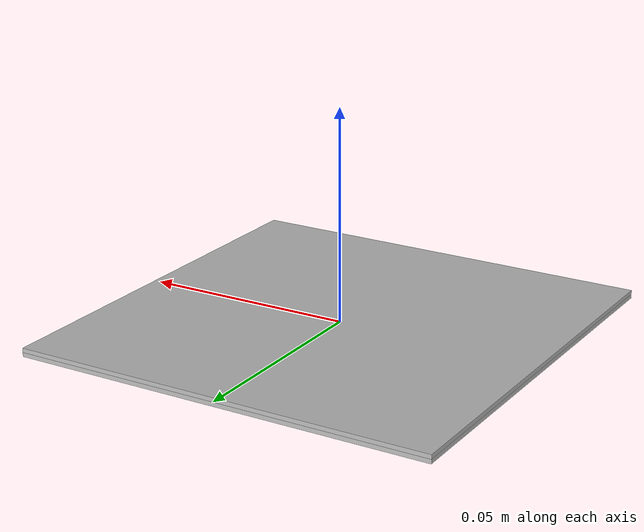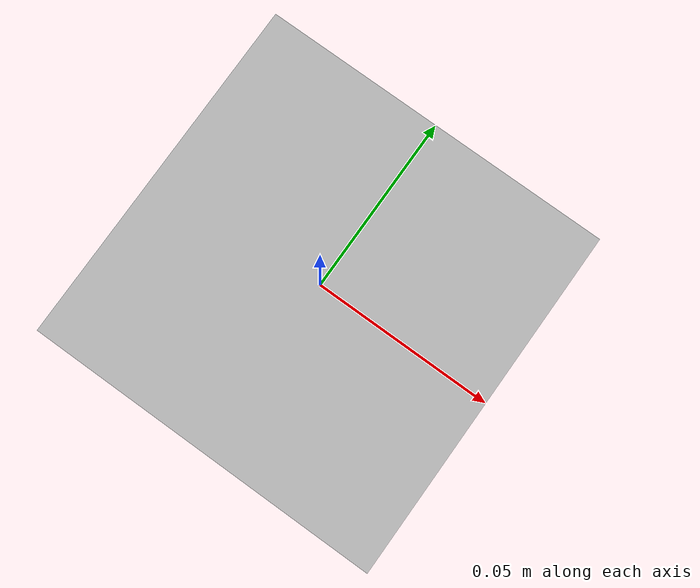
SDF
<?xml version="1.0" ?>
<sdf version="1.4">
  <model name="marker_115">
    <static>true</static>
    <link name="marker">
      <gravity>false</gravity>

      <visual name="front_visual">
        <pose>0 0 0.0005 0 0 0</pose>
        <geometry>
          <box>
           <size>0.10 0.10 0.001</size>
         </box>
        </geometry>
        <material>
          <script>
           <uri>model://marker_115/material/scripts</uri>
            <uri>model://marker_115/material/textures</uri>
            <name>marker_115</name>
          </script>
        </material>
      </visual>

      <!-- Hide the marker from the back -->
      <visual name="rear_visual">
        <pose>0 0 -0.0005 0 0 0</pose>
        <geometry>
          <box>
            <size>0.10 0.10 0.001</size>
          </box>
        </geometry>
      </visual>

      <collision name="collision">
        <geometry>
          <box>
            <size>0.10 0.10 0.001</size>
          </box>
        </geometry>
      </collision>
    </link>
  </model>
</sdf>
